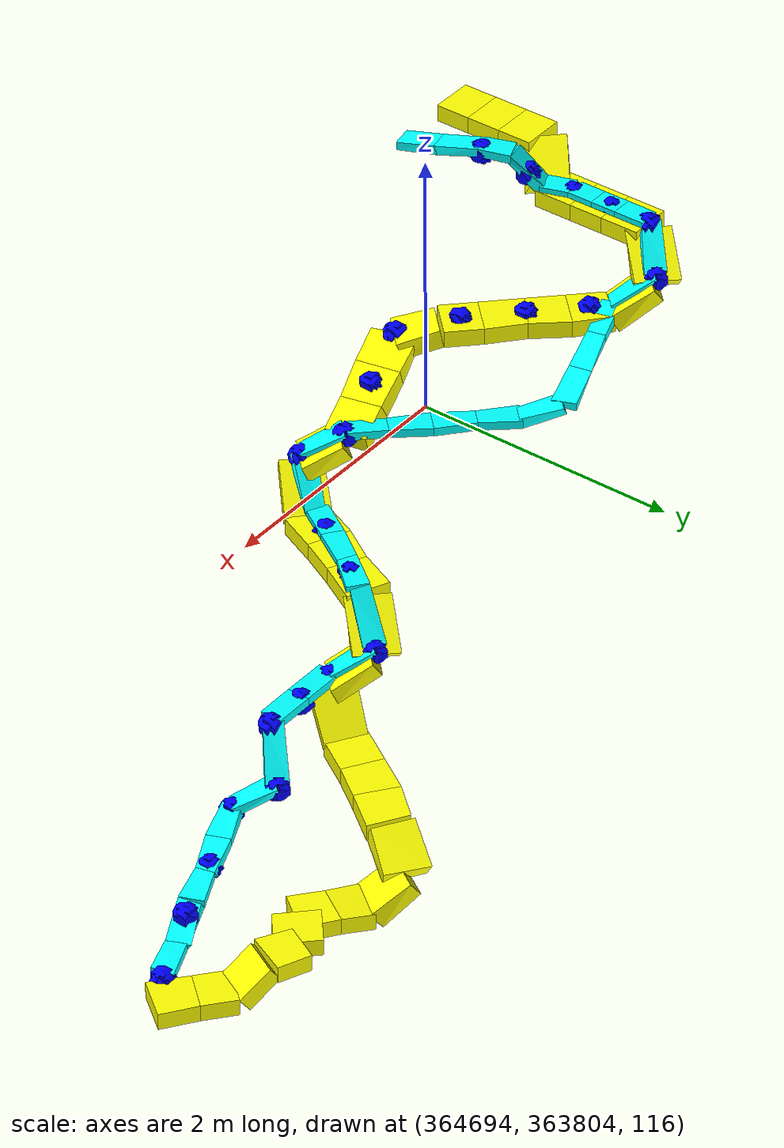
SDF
<sdf version="1.5">
 <world name="default">
  <include><uri>model://sun</uri></include>
  <model name="road_segment_126">
   <static>true</static>
   <pose>364693.84 363804.215 118.44 0 -0.0 1.5707963267948966</pose>
   <link name="link">
    <collision name="collision">
     <geometry><box><size>0.25 0.3 0.12</size></box></geometry>
     <surface><friction><ode><mu>0.2</mu><mu2>0.2</mu2></ode></friction></surface>
    </collision>
    <visual name="visual">
     <geometry><box><size>0.25 0.3 0.12</size></box></geometry>
     <material><ambient>1 1 0 1</ambient><diffuse>1 1 0 1</diffuse><emissive>1 1 0 1</emissive></material>
    </visual>
   </link>
  </model>
  <model name="road_segment_127">
   <static>true</static>
   <pose>364693.84 363804.465 118.44 0 -0.0 1.5707963267948966</pose>
   <link name="link">
    <collision name="collision">
     <geometry><box><size>0.25 0.3 0.12</size></box></geometry>
     <surface><friction><ode><mu>0.2</mu><mu2>0.2</mu2></ode></friction></surface>
    </collision>
    <visual name="visual">
     <geometry><box><size>0.25 0.3 0.12</size></box></geometry>
     <material><ambient>1 1 0 1</ambient><diffuse>1 1 0 1</diffuse><emissive>1 1 0 1</emissive></material>
    </visual>
   </link>
  </model>
  <model name="road_segment_128">
   <static>true</static>
   <pose>364693.84 363804.715 118.44 0 -0.0 1.5707963267948966</pose>
   <link name="link">
    <collision name="collision">
     <geometry><box><size>0.25 0.3 0.12</size></box></geometry>
     <surface><friction><ode><mu>0.2</mu><mu2>0.2</mu2></ode></friction></surface>
    </collision>
    <visual name="visual">
     <geometry><box><size>0.25 0.3 0.12</size></box></geometry>
     <material><ambient>1 1 0 1</ambient><diffuse>1 1 0 1</diffuse><emissive>1 1 0 1</emissive></material>
    </visual>
   </link>
  </model>
  <model name="road_segment_129">
   <static>true</static>
   <pose>364693.94 363804.94 118.34000000122235 0 0.615479703017887 0.7853981633974483</pose>
   <link name="link">
    <collision name="collision">
     <geometry><box><size>0.3464101600485464 0.3 0.12</size></box></geometry>
     <surface><friction><ode><mu>0.2</mu><mu2>0.2</mu2></ode></friction></surface>
    </collision>
    <visual name="visual">
     <geometry><box><size>0.3464101600485464 0.3 0.12</size></box></geometry>
     <material><ambient>1 1 0 1</ambient><diffuse>1 1 0 1</diffuse><emissive>1 1 0 1</emissive></material>
    </visual>
   </link>
  </model>
  <model name="road_segment_130">
   <static>true</static>
   <pose>364694.04 363805.17333333334 118.24000000122236 0 9.167706594004524e-09 1.5707963267948966</pose>
   <link name="link">
    <collision name="collision">
     <geometry><box><size>0.26666666666278616 0.3 0.12</size></box></geometry>
     <surface><friction><ode><mu>0.2</mu><mu2>0.2</mu2></ode></friction></surface>
    </collision>
    <visual name="visual">
     <geometry><box><size>0.26666666666278616 0.3 0.12</size></box></geometry>
     <material><ambient>1 1 0 1</ambient><diffuse>1 1 0 1</diffuse><emissive>1 1 0 1</emissive></material>
    </visual>
   </link>
  </model>
  <model name="road_segment_131">
   <static>true</static>
   <pose>364694.04 363805.44 118.24 0 -0.0 1.5707963267948966</pose>
   <link name="link">
    <collision name="collision">
     <geometry><box><size>0.2666666667209938 0.3 0.12</size></box></geometry>
     <surface><friction><ode><mu>0.2</mu><mu2>0.2</mu2></ode></friction></surface>
    </collision>
    <visual name="visual">
     <geometry><box><size>0.2666666667209938 0.3 0.12</size></box></geometry>
     <material><ambient>1 1 0 1</ambient><diffuse>1 1 0 1</diffuse><emissive>1 1 0 1</emissive></material>
    </visual>
   </link>
  </model>
  <model name="road_segment_132">
   <static>true</static>
   <pose>364694.04 363805.70666666667 118.24 0 -0.0 1.5707963267948966</pose>
   <link name="link">
    <collision name="collision">
     <geometry><box><size>0.26666666666278616 0.3 0.12</size></box></geometry>
     <surface><friction><ode><mu>0.2</mu><mu2>0.2</mu2></ode></friction></surface>
    </collision>
    <visual name="visual">
     <geometry><box><size>0.26666666666278616 0.3 0.12</size></box></geometry>
     <material><ambient>1 1 0 1</ambient><diffuse>1 1 0 1</diffuse><emissive>1 1 0 1</emissive></material>
    </visual>
   </link>
  </model>
  <model name="road_segment_133">
   <static>true</static>
   <pose>364694.14 363805.94 118.12500000143918 0 0.6827216774442275 0.7853981632519291</pose>
   <link name="link">
    <collision name="collision">
     <geometry><box><size>0.36455452083601586 0.3 0.12</size></box></geometry>
     <surface><friction><ode><mu>0.2</mu><mu2>0.2</mu2></ode></friction></surface>
    </collision>
    <visual name="visual">
     <geometry><box><size>0.36455452083601586 0.3 0.12</size></box></geometry>
     <material><ambient>1 1 0 1</ambient><diffuse>1 1 0 1</diffuse><emissive>1 1 0 1</emissive></material>
    </visual>
   </link>
  </model>
  <model name="road_segment_134">
   <static>true</static>
   <pose>364694.33999999997 363805.93999999994 117.91000000200235 0 0.6154797127725574 -0.7853981633974483</pose>
   <link name="link">
    <collision name="collision">
     <geometry><box><size>0.34641016253876156 0.3 0.12</size></box></geometry>
     <surface><friction><ode><mu>0.2</mu><mu2>0.2</mu2></ode></friction></surface>
    </collision>
    <visual name="visual">
     <geometry><box><size>0.34641016253876156 0.3 0.12</size></box></geometry>
     <material><ambient>1 1 0 1</ambient><diffuse>1 1 0 1</diffuse><emissive>1 1 0 1</emissive></material>
    </visual>
   </link>
  </model>
  <model name="road_segment_135">
   <static>true</static>
   <pose>364694.54000000004 363805.74 117.81000000056316 0 3.982156419239165e-09 -0.7853981632519291</pose>
   <link name="link">
    <collision name="collision">
     <geometry><box><size>0.2828427124499236 0.3 0.12</size></box></geometry>
     <surface><friction><ode><mu>0.2</mu><mu2>0.2</mu2></ode></friction></surface>
    </collision>
    <visual name="visual">
     <geometry><box><size>0.2828427124499236 0.3 0.12</size></box></geometry>
     <material><ambient>1 1 0 1</ambient><diffuse>1 1 0 1</diffuse><emissive>1 1 0 1</emissive></material>
    </visual>
   </link>
  </model>
  <model name="road_segment_136">
   <static>true</static>
   <pose>364694.74 363805.54000000004 117.81 0 -0.0 -0.7853981635429674</pose>
   <link name="link">
    <collision name="collision">
     <geometry><box><size>0.2828427124499236 0.3 0.12</size></box></geometry>
     <surface><friction><ode><mu>0.2</mu><mu2>0.2</mu2></ode></friction></surface>
    </collision>
    <visual name="visual">
     <geometry><box><size>0.2828427124499236 0.3 0.12</size></box></geometry>
     <material><ambient>1 1 0 1</ambient><diffuse>1 1 0 1</diffuse><emissive>1 1 0 1</emissive></material>
    </visual>
   </link>
  </model>
  <model name="road_segment_137">
   <static>true</static>
   <pose>364694.93999999994 363805.33999999997 117.81 0 -0.0 -0.7853981633974483</pose>
   <link name="link">
    <collision name="collision">
     <geometry><box><size>0.2828427124910826 0.3 0.12</size></box></geometry>
     <surface><friction><ode><mu>0.2</mu><mu2>0.2</mu2></ode></friction></surface>
    </collision>
    <visual name="visual">
     <geometry><box><size>0.2828427124910826 0.3 0.12</size></box></geometry>
     <material><ambient>1 1 0 1</ambient><diffuse>1 1 0 1</diffuse><emissive>1 1 0 1</emissive></material>
    </visual>
   </link>
  </model>
  <model name="road_segment_138">
   <static>true</static>
   <pose>364695.14 363805.14 117.81000000214787 0 -1.518769276526926e-08 -0.7853981632519291</pose>
   <link name="link">
    <collision name="collision">
     <geometry><box><size>0.28284271244992365 0.3 0.12</size></box></geometry>
     <surface><friction><ode><mu>0.2</mu><mu2>0.2</mu2></ode></friction></surface>
    </collision>
    <visual name="visual">
     <geometry><box><size>0.28284271244992365 0.3 0.12</size></box></geometry>
     <material><ambient>1 1 0 1</ambient><diffuse>1 1 0 1</diffuse><emissive>1 1 0 1</emissive></material>
    </visual>
   </link>
  </model>
  <model name="road_segment_139">
   <static>true</static>
   <pose>364695.33999999997 363804.94000000006 117.7750000027736 0 0.242612453724079 -0.7853981633974483</pose>
   <link name="link">
    <collision name="collision">
     <geometry><box><size>0.2913760464340045 0.3 0.12</size></box></geometry>
     <surface><friction><ode><mu>0.2</mu><mu2>0.2</mu2></ode></friction></surface>
    </collision>
    <visual name="visual">
     <geometry><box><size>0.2913760464340045 0.3 0.12</size></box></geometry>
     <material><ambient>1 1 0 1</ambient><diffuse>1 1 0 1</diffuse><emissive>1 1 0 1</emissive></material>
    </visual>
   </link>
  </model>
  <model name="road_segment_140">
   <static>true</static>
   <pose>364695.57333333336 363804.87333333335 117.69666666885624 0 0.3054303604847163 0.24497866307550445</pose>
   <link name="link">
    <collision name="collision">
     <geometry><box><size>0.2882128837115288 0.3 0.12</size></box></geometry>
     <surface><friction><ode><mu>0.2</mu><mu2>0.2</mu2></ode></friction></surface>
    </collision>
    <visual name="visual">
     <geometry><box><size>0.2882128837115288 0.3 0.12</size></box></geometry>
     <material><ambient>1 1 0 1</ambient><diffuse>1 1 0 1</diffuse><emissive>1 1 0 1</emissive></material>
    </visual>
   </link>
  </model>
  <model name="road_segment_141">
   <static>true</static>
   <pose>364695.83999999997 363804.94 117.6100000031403 0 0.30543036660978573 0.24497866307550445</pose>
   <link name="link">
    <collision name="collision">
     <geometry><box><size>0.28821288426812897 0.3 0.12</size></box></geometry>
     <surface><friction><ode><mu>0.2</mu><mu2>0.2</mu2></ode></friction></surface>
    </collision>
    <visual name="visual">
     <geometry><box><size>0.28821288426812897 0.3 0.12</size></box></geometry>
     <material><ambient>1 1 0 1</ambient><diffuse>1 1 0 1</diffuse><emissive>1 1 0 1</emissive></material>
    </visual>
   </link>
  </model>
  <model name="road_segment_142">
   <static>true</static>
   <pose>364696.1066666667 363805.00666666665 117.52333333649887 0 0.30543036660978573 0.24497866307550445</pose>
   <link name="link">
    <collision name="collision">
     <geometry><box><size>0.28821288426812897 0.3 0.12</size></box></geometry>
     <surface><friction><ode><mu>0.2</mu><mu2>0.2</mu2></ode></friction></surface>
    </collision>
    <visual name="visual">
     <geometry><box><size>0.28821288426812897 0.3 0.12</size></box></geometry>
     <material><ambient>1 1 0 1</ambient><diffuse>1 1 0 1</diffuse><emissive>1 1 0 1</emissive></material>
    </visual>
   </link>
  </model>
  <model name="road_segment_143">
   <static>true</static>
   <pose>364696.33999999997 363804.94 117.41000000222935 0 0.45961933638723745 -0.7853981632519291</pose>
   <link name="link">
    <collision name="collision">
     <geometry><box><size>0.31559467758083537 0.3 0.12</size></box></geometry>
     <surface><friction><ode><mu>0.2</mu><mu2>0.2</mu2></ode></friction></surface>
    </collision>
    <visual name="visual">
     <geometry><box><size>0.31559467758083537 0.3 0.12</size></box></geometry>
     <material><ambient>1 1 0 1</ambient><diffuse>1 1 0 1</diffuse><emissive>1 1 0 1</emissive></material>
    </visual>
   </link>
  </model>
  <model name="road_segment_144">
   <static>true</static>
   <pose>364696.54000000004 363804.94 117.21000000222936 0 0.7433431710328967 0.7853981632519291</pose>
   <link name="link">
    <collision name="collision">
     <geometry><box><size>0.38418745294360357 0.3 0.12</size></box></geometry>
     <surface><friction><ode><mu>0.2</mu><mu2>0.2</mu2></ode></friction></surface>
    </collision>
    <visual name="visual">
     <geometry><box><size>0.38418745294360357 0.3 0.12</size></box></geometry>
     <material><ambient>1 1 0 1</ambient><diffuse>1 1 0 1</diffuse><emissive>1 1 0 1</emissive></material>
    </visual>
   </link>
  </model>
  <model name="road_segment_145">
   <static>true</static>
   <pose>364696.70666666667 363805.17333333334 117.08000000158907 0 1.0659818940150594e-08 1.107148717881402</pose>
   <link name="link">
    <collision name="collision">
     <geometry><box><size>0.2981423969826178 0.3 0.12</size></box></geometry>
     <surface><friction><ode><mu>0.2</mu><mu2>0.2</mu2></ode></friction></surface>
    </collision>
    <visual name="visual">
     <geometry><box><size>0.2981423969826178 0.3 0.12</size></box></geometry>
     <material><ambient>1 1 0 1</ambient><diffuse>1 1 0 1</diffuse><emissive>1 1 0 1</emissive></material>
    </visual>
   </link>
  </model>
  <model name="road_segment_146">
   <static>true</static>
   <pose>364696.83999999997 363805.44 117.08 0 -0.0 1.1071487177940904</pose>
   <link name="link">
    <collision name="collision">
     <geometry><box><size>0.29814239706071155 0.3 0.12</size></box></geometry>
     <surface><friction><ode><mu>0.1</mu><mu2>0.1</mu2></ode></friction></surface>
    </collision>
    <visual name="visual">
     <geometry><box><size>0.29814239706071155 0.3 0.12</size></box></geometry>
     <material><ambient>1 1 0 1</ambient><diffuse>1 1 0 1</diffuse><emissive>1 1 0 1</emissive></material>
    </visual>
   </link>
  </model>
  <model name="road_segment_147">
   <static>true</static>
   <pose>364696.9733333333 363805.70666666667 117.08 0 -0.0 1.107148717881402</pose>
   <link name="link">
    <collision name="collision">
     <geometry><box><size>0.2981423969826178 0.3 0.12</size></box></geometry>
     <surface><friction><ode><mu>0.1</mu><mu2>0.1</mu2></ode></friction></surface>
    </collision>
    <visual name="visual">
     <geometry><box><size>0.2981423969826178 0.3 0.12</size></box></geometry>
     <material><ambient>1 1 0 1</ambient><diffuse>1 1 0 1</diffuse><emissive>1 1 0 1</emissive></material>
    </visual>
   </link>
  </model>
  <model name="road_segment_148">
   <static>true</static>
   <pose>364697.14 363805.94 116.9500000016269 0 0.7433431684339605 0.7853981632519291</pose>
   <link name="link">
    <collision name="collision">
     <geometry><box><size>0.3841874520257632 0.3 0.12</size></box></geometry>
     <surface><friction><ode><mu>0.1</mu><mu2>0.1</mu2></ode></friction></surface>
    </collision>
    <visual name="visual">
     <geometry><box><size>0.3841874520257632 0.3 0.12</size></box></geometry>
     <material><ambient>1 1 0 1</ambient><diffuse>1 1 0 1</diffuse><emissive>1 1 0 1</emissive></material>
    </visual>
   </link>
  </model>
  <model name="road_segment_149">
   <static>true</static>
   <pose>364697.33999999997 363805.94 116.73000000239524 0 0.5667523301984198 -0.7853981632519291</pose>
   <link name="link">
    <collision name="collision">
     <geometry><box><size>0.3352610931858899 0.3 0.12</size></box></geometry>
     <surface><friction><ode><mu>0.1</mu><mu2>0.1</mu2></ode></friction></surface>
    </collision>
    <visual name="visual">
     <geometry><box><size>0.3352610931858899 0.3 0.12</size></box></geometry>
     <material><ambient>1 1 0 1</ambient><diffuse>1 1 0 1</diffuse><emissive>1 1 0 1</emissive></material>
    </visual>
   </link>
  </model>
  <model name="road_segment_150">
   <static>true</static>
   <pose>364697.52 363805.96 116.50000000076834 0 0.7705444963345205 0.982793723303298</pose>
   <link name="link">
    <collision name="collision">
     <geometry><box><size>0.40199502589941777 0.3 0.12</size></box></geometry>
     <surface><friction><ode><mu>0.1</mu><mu2>0.1</mu2></ode></friction></surface>
    </collision>
    <visual name="visual">
     <geometry><box><size>0.40199502589941777 0.3 0.12</size></box></geometry>
     <material><ambient>1 1 0 1</ambient><diffuse>1 1 0 1</diffuse><emissive>1 1 0 1</emissive></material>
    </visual>
   </link>
  </model>
  <model name="road_segment_151">
   <static>true</static>
   <pose>364697.68 363806.2 116.36 0 -0.0 0.9827937231353913</pose>
   <link name="link">
    <collision name="collision">
     <geometry><box><size>0.28844410204745125 0.3 0.12</size></box></geometry>
     <surface><friction><ode><mu>0.02</mu><mu2>0.02</mu2></ode></friction></surface>
    </collision>
    <visual name="visual">
     <geometry><box><size>0.28844410204745125 0.3 0.12</size></box></geometry>
     <material><ambient>1 1 0 1</ambient><diffuse>1 1 0 1</diffuse><emissive>1 1 0 1</emissive></material>
    </visual>
   </link>
  </model>
  <model name="road_segment_152">
   <static>true</static>
   <pose>364697.83999999997 363806.44 116.36 0 -0.0 0.982793723303298</pose>
   <link name="link">
    <collision name="collision">
     <geometry><box><size>0.28844410201516346 0.3 0.12</size></box></geometry>
     <surface><friction><ode><mu>0.02</mu><mu2>0.02</mu2></ode></friction></surface>
    </collision>
    <visual name="visual">
     <geometry><box><size>0.28844410201516346 0.3 0.12</size></box></geometry>
     <material><ambient>1 1 0 1</ambient><diffuse>1 1 0 1</diffuse><emissive>1 1 0 1</emissive></material>
    </visual>
   </link>
  </model>
  <model name="road_segment_153">
   <static>true</static>
   <pose>364698.0 363806.68 116.36 0 -0.0 0.9827937231353913</pose>
   <link name="link">
    <collision name="collision">
     <geometry><box><size>0.28844410204745125 0.3 0.12</size></box></geometry>
     <surface><friction><ode><mu>0.02</mu><mu2>0.02</mu2></ode></friction></surface>
    </collision>
    <visual name="visual">
     <geometry><box><size>0.28844410204745125 0.3 0.12</size></box></geometry>
     <material><ambient>1 1 0 1</ambient><diffuse>1 1 0 1</diffuse><emissive>1 1 0 1</emissive></material>
    </visual>
   </link>
  </model>
  <model name="road_segment_154">
   <static>true</static>
   <pose>364698.16000000003 363806.92 116.28000000102445 0 0.506444638013839 0.982793723303298</pose>
   <link name="link">
    <collision name="collision">
     <geometry><box><size>0.3298484490363457 0.3 0.12</size></box></geometry>
     <surface><friction><ode><mu>0.02</mu><mu2>0.02</mu2></ode></friction></surface>
    </collision>
    <visual name="visual">
     <geometry><box><size>0.3298484490363457 0.3 0.12</size></box></geometry>
     <material><ambient>1 1 0 1</ambient><diffuse>1 1 0 1</diffuse><emissive>1 1 0 1</emissive></material>
    </visual>
   </link>
  </model>
  <model name="road_segment_155">
   <static>true</static>
   <pose>364698.33999999997 363806.9733333333 116.10833333534781 0 0.6515877585321058 -0.5880026034132422</pose>
   <link name="link">
    <collision name="collision">
     <geometry><box><size>0.3023059524893846 0.3 0.12</size></box></geometry>
     <surface><friction><ode><mu>0.02</mu><mu2>0.02</mu2></ode></friction></surface>
    </collision>
    <visual name="visual">
     <geometry><box><size>0.3023059524893846 0.3 0.12</size></box></geometry>
     <material><ambient>1 1 0 1</ambient><diffuse>1 1 0 1</diffuse><emissive>1 1 0 1</emissive></material>
    </visual>
   </link>
  </model>
  <model name="road_segment_156">
   <static>true</static>
   <pose>364698.54000000004 363806.83999999997 116.02833333432336 0 -0.09676933122981045 -0.5880026036147302</pose>
   <link name="link">
    <collision name="collision">
     <geometry><box><size>0.24149994232239522 0.3 0.12</size></box></geometry>
     <surface><friction><ode><mu>0.02</mu><mu2>0.02</mu2></ode></friction></surface>
    </collision>
    <visual name="visual">
     <geometry><box><size>0.24149994232239522 0.3 0.12</size></box></geometry>
     <material><ambient>1 1 0 1</ambient><diffuse>1 1 0 1</diffuse><emissive>1 1 0 1</emissive></material>
    </visual>
   </link>
  </model>
  <model name="road_segment_157">
   <static>true</static>
   <pose>364698.74 363806.70666666667 116.04 0 -0.0 -0.5880026034132422</pose>
   <link name="link">
    <collision name="collision">
     <geometry><box><size>0.2403700850233988 0.3 0.12</size></box></geometry>
     <surface><friction><ode><mu>0.02</mu><mu2>0.02</mu2></ode></friction></surface>
    </collision>
    <visual name="visual">
     <geometry><box><size>0.2403700850233988 0.3 0.12</size></box></geometry>
     <material><ambient>1 1 0 1</ambient><diffuse>1 1 0 1</diffuse><emissive>1 1 0 1</emissive></material>
    </visual>
   </link>
  </model>
  <model name="road_segment_158">
   <static>true</static>
   <pose>364698.94 363806.74 116.04 0 -0.0 0.7853981635429674</pose>
   <link name="link">
    <collision name="collision">
     <geometry><box><size>0.2828427124499236 0.3 0.12</size></box></geometry>
     <surface><friction><ode><mu>0.02</mu><mu2>0.02</mu2></ode></friction></surface>
    </collision>
    <visual name="visual">
     <geometry><box><size>0.2828427124499236 0.3 0.12</size></box></geometry>
     <material><ambient>1 1 0 1</ambient><diffuse>1 1 0 1</diffuse><emissive>1 1 0 1</emissive></material>
    </visual>
   </link>
  </model>
  <model name="road_segment_159">
   <static>true</static>
   <pose>364699.14 363806.79000000004 116.04 0 -0.0 -0.4636476091172214</pose>
   <link name="link">
    <collision name="collision">
     <geometry><box><size>0.22360679777601022 0.3 0.12</size></box></geometry>
     <surface><friction><ode><mu>0.02</mu><mu2>0.02</mu2></ode></friction></surface>
    </collision>
    <visual name="visual">
     <geometry><box><size>0.22360679777601022 0.3 0.12</size></box></geometry>
     <material><ambient>1 1 0 1</ambient><diffuse>1 1 0 1</diffuse><emissive>1 1 0 1</emissive></material>
    </visual>
   </link>
  </model>
  <model name="road_segment_160">
   <static>true</static>
   <pose>364699.33999999997 363806.69 115.95500000034635 0 0.6500372064508019 -0.46364760888439077</pose>
   <link name="link">
    <collision name="collision">
     <geometry><box><size>0.28089143768454294 0.3 0.12</size></box></geometry>
     <surface><friction><ode><mu>0.2</mu><mu2>0.2</mu2></ode></friction></surface>
    </collision>
    <visual name="visual">
     <geometry><box><size>0.28089143768454294 0.3 0.12</size></box></geometry>
     <material><ambient>1 1 0 1</ambient><diffuse>1 1 0 1</diffuse><emissive>1 1 0 1</emissive></material>
    </visual>
   </link>
  </model>
  <model name="road_segment_161">
   <static>true</static>
   <pose>364699.54000000004 363806.56000000006 115.87000000034634 0 2.704459829751352e-09 -0.6747409421170752</pose>
   <link name="link">
    <collision name="collision">
     <geometry><box><size>0.25612496949040514 0.3 0.12</size></box></geometry>
     <surface><friction><ode><mu>0.02</mu><mu2>0.02</mu2></ode></friction></surface>
    </collision>
    <visual name="visual">
     <geometry><box><size>0.25612496949040514 0.3 0.12</size></box></geometry>
     <material><ambient>1 1 0 1</ambient><diffuse>1 1 0 1</diffuse><emissive>1 1 0 1</emissive></material>
    </visual>
   </link>
  </model>
  <model name="road_segment_162">
   <static>true</static>
   <pose>364699.74 363806.4 115.87 0 -0.0 -0.6747409422945376</pose>
   <link name="link">
    <collision name="collision">
     <geometry><box><size>0.2561249695267672 0.3 0.12</size></box></geometry>
     <surface><friction><ode><mu>0.02</mu><mu2>0.02</mu2></ode></friction></surface>
    </collision>
    <visual name="visual">
     <geometry><box><size>0.2561249695267672 0.3 0.12</size></box></geometry>
     <material><ambient>1 1 0 1</ambient><diffuse>1 1 0 1</diffuse><emissive>1 1 0 1</emissive></material>
    </visual>
   </link>
  </model>
  <model name="normal_astar_segment_102">
   <static>true</static>
   <pose>364694.31200000003 363804.196 118.41280000069308 0 -0.21282356075202818 1.731559067436267</pose>
   <link name="link">
    <visual name="visual">
     <geometry><box><size>0.3067882657805418 0.15 0.06</size></box></geometry>
     <material><ambient>0 1 1 1</ambient><diffuse>0 1 1 1</diffuse><emissive>0 1 1 1</emissive></material>
    </visual>
   </link>
  </model>
  <model name="normal_astar_segment_103">
   <static>true</static>
   <pose>364694.26399999997 363804.492 118.47760000034889 0 -0.21282355853827625 1.731559067467339</pose>
   <link name="link">
    <visual name="visual">
     <geometry><box><size>0.3067882655749961 0.15 0.06</size></box></geometry>
     <material><ambient>0 1 1 1</ambient><diffuse>0 1 1 1</diffuse><emissive>0 1 1 1</emissive></material>
    </visual>
   </link>
  </model>
  <model name="normal_astar_segment_104">
   <static>true</static>
   <pose>364694.20666666667 363804.74 118.50999999999998 0 6.740800259471083e-14 1.8925468811042274</pose>
   <link name="link">
    <visual name="visual">
     <geometry><box><size>0.21081851068402757 0.15 0.06</size></box></geometry>
     <material><ambient>0 1 1 1</ambient><diffuse>0 1 1 1</diffuse><emissive>0 1 1 1</emissive></material>
    </visual>
   </link>
  </model>
  <model name="normal_astar_segment_105">
   <static>true</static>
   <pose>364694.14 363804.94 118.41000000122234 0 0.7590702032359603 1.8925468814534734</pose>
   <link name="link">
    <visual name="visual">
     <geometry><box><size>0.2905932611978746 0.15 0.06</size></box></geometry>
     <material><ambient>0 1 1 1</ambient><diffuse>0 1 1 1</diffuse><emissive>0 1 1 1</emissive></material>
    </visual>
   </link>
  </model>
  <model name="normal_astar_segment_106">
   <static>true</static>
   <pose>364694.0733333333 363805.14 118.31000000122235 0 1.1596333502373293e-08 1.8925468811042274</pose>
   <link name="link">
    <visual name="visual">
     <geometry><box><size>0.2108185106840276 0.15 0.06</size></box></geometry>
     <material><ambient>0 1 1 1</ambient><diffuse>0 1 1 1</diffuse><emissive>0 1 1 1</emissive></material>
    </visual>
   </link>
  </model>
  <model name="normal_astar_segment_107">
   <static>true</static>
   <pose>364694.04 363805.33999999997 118.30999999999999 0 -0.0 1.5707963267948966</pose>
   <link name="link">
    <visual name="visual">
     <geometry><box><size>0.20000000001164153 0.15 0.06</size></box></geometry>
     <material><ambient>0 1 1 1</ambient><diffuse>0 1 1 1</diffuse><emissive>0 1 1 1</emissive></material>
    </visual>
   </link>
  </model>
  <model name="normal_astar_segment_108">
   <static>true</static>
   <pose>364694.04 363805.54000000004 118.30999999999999 0 -0.0 1.5707963267948966</pose>
   <link name="link">
    <visual name="visual">
     <geometry><box><size>0.20000000001164153 0.15 0.06</size></box></geometry>
     <material><ambient>0 1 1 1</ambient><diffuse>0 1 1 1</diffuse><emissive>0 1 1 1</emissive></material>
    </visual>
   </link>
  </model>
  <model name="normal_astar_segment_109">
   <static>true</static>
   <pose>364694.04 363805.74 118.30999999999999 0 -0.0 1.5707963267948966</pose>
   <link name="link">
    <visual name="visual">
     <geometry><box><size>0.20000000001164153 0.15 0.06</size></box></geometry>
     <material><ambient>0 1 1 1</ambient><diffuse>0 1 1 1</diffuse><emissive>0 1 1 1</emissive></material>
    </visual>
   </link>
  </model>
  <model name="normal_astar_segment_110">
   <static>true</static>
   <pose>364694.14 363805.94 118.19500000143917 0 0.6827216774442275 0.7853981632519291</pose>
   <link name="link">
    <visual name="visual">
     <geometry><box><size>0.36455452083601586 0.15 0.06</size></box></geometry>
     <material><ambient>0 1 1 1</ambient><diffuse>0 1 1 1</diffuse><emissive>0 1 1 1</emissive></material>
    </visual>
   </link>
  </model>
  <model name="normal_astar_segment_111">
   <static>true</static>
   <pose>364694.33999999997 363805.94 117.98000000200234 0 0.6154797128411558 -0.7853981632519291</pose>
   <link name="link">
    <visual name="visual">
     <geometry><box><size>0.34641016250515533 0.15 0.06</size></box></geometry>
     <material><ambient>0 1 1 1</ambient><diffuse>0 1 1 1</diffuse><emissive>0 1 1 1</emissive></material>
    </visual>
   </link>
  </model>
  <model name="normal_astar_segment_112">
   <static>true</static>
   <pose>364694.57333333336 363805.87333333335 117.8366666688315 0 0.30543035982025635 0.24497866307550445</pose>
   <link name="link">
    <visual name="visual">
     <geometry><box><size>0.2882128836511477 0.15 0.06</size></box></geometry>
     <material><ambient>0 1 1 1</ambient><diffuse>0 1 1 1</diffuse><emissive>0 1 1 1</emissive></material>
    </visual>
   </link>
  </model>
  <model name="normal_astar_segment_113">
   <static>true</static>
   <pose>364694.83999999997 363805.94 117.75000000321596 0 0.3054303666098328 0.24497866307550445</pose>
   <link name="link">
    <visual name="visual">
     <geometry><box><size>0.28821288426813324 0.15 0.06</size></box></geometry>
     <material><ambient>0 1 1 1</ambient><diffuse>0 1 1 1</diffuse><emissive>0 1 1 1</emissive></material>
    </visual>
   </link>
  </model>
  <model name="normal_astar_segment_114">
   <static>true</static>
   <pose>364695.1066666667 363806.00666666665 117.66333333657451 0 0.30543036660978573 0.24497866307550445</pose>
   <link name="link">
    <visual name="visual">
     <geometry><box><size>0.28821288426812897 0.15 0.06</size></box></geometry>
     <material><ambient>0 1 1 1</ambient><diffuse>0 1 1 1</diffuse><emissive>0 1 1 1</emissive></material>
    </visual>
   </link>
  </model>
  <model name="normal_astar_segment_115">
   <static>true</static>
   <pose>364695.33999999997 363805.93999999994 117.58500000210711 0 0.24261245122246494 -0.7853981633974483</pose>
   <link name="link">
    <visual name="visual">
     <geometry><box><size>0.2913760462536084 0.15 0.06</size></box></geometry>
     <material><ambient>0 1 1 1</ambient><diffuse>0 1 1 1</diffuse><emissive>0 1 1 1</emissive></material>
    </visual>
   </link>
  </model>
  <model name="normal_astar_segment_116">
   <static>true</static>
   <pose>364695.54000000004 363805.74 117.55000000048021 0 3.3956201195823727e-09 -0.7853981632519291</pose>
   <link name="link">
    <visual name="visual">
     <geometry><box><size>0.2828427124499236 0.15 0.06</size></box></geometry>
     <material><ambient>0 1 1 1</ambient><diffuse>0 1 1 1</diffuse><emissive>0 1 1 1</emissive></material>
    </visual>
   </link>
  </model>
  <model name="normal_astar_segment_117">
   <static>true</static>
   <pose>364695.74 363805.54000000004 117.55 0 -0.0 -0.7853981635429674</pose>
   <link name="link">
    <visual name="visual">
     <geometry><box><size>0.2828427124499236 0.15 0.06</size></box></geometry>
     <material><ambient>0 1 1 1</ambient><diffuse>0 1 1 1</diffuse><emissive>0 1 1 1</emissive></material>
    </visual>
   </link>
  </model>
  <model name="normal_astar_segment_118">
   <static>true</static>
   <pose>364695.93999999994 363805.33999999997 117.55 0 -0.0 -0.7853981633974483</pose>
   <link name="link">
    <visual name="visual">
     <geometry><box><size>0.2828427124910826 0.15 0.06</size></box></geometry>
     <material><ambient>0 1 1 1</ambient><diffuse>0 1 1 1</diffuse><emissive>0 1 1 1</emissive></material>
    </visual>
   </link>
  </model>
  <model name="normal_astar_segment_119">
   <static>true</static>
   <pose>364696.14 363805.14 117.55000000155123 0 -1.096884176767793e-08 -0.7853981632519291</pose>
   <link name="link">
    <visual name="visual">
     <geometry><box><size>0.2828427124499236 0.15 0.06</size></box></geometry>
     <material><ambient>0 1 1 1</ambient><diffuse>0 1 1 1</diffuse><emissive>0 1 1 1</emissive></material>
    </visual>
   </link>
  </model>
  <model name="normal_astar_segment_120">
   <static>true</static>
   <pose>364696.33999999997 363804.94000000006 117.48000000219152 0 0.4596193361144485 -0.7853981633974483</pose>
   <link name="link">
    <visual name="visual">
     <geometry><box><size>0.3155946775841477 0.15 0.06</size></box></geometry>
     <material><ambient>0 1 1 1</ambient><diffuse>0 1 1 1</diffuse><emissive>0 1 1 1</emissive></material>
    </visual>
   </link>
  </model>
  <model name="normal_astar_segment_121">
   <static>true</static>
   <pose>364696.52 363804.96 117.28000000064027 0 0.7335813261273669 0.982793723303298</pose>
   <link name="link">
    <visual name="visual">
     <geometry><box><size>0.3883297576200314 0.15 0.06</size></box></geometry>
     <material><ambient>0 1 1 1</ambient><diffuse>0 1 1 1</diffuse><emissive>0 1 1 1</emissive></material>
    </visual>
   </link>
  </model>
  <model name="normal_astar_segment_122">
   <static>true</static>
   <pose>364696.68 363805.2 117.14999999999999 0 -0.0 0.9827937231353913</pose>
   <link name="link">
    <visual name="visual">
     <geometry><box><size>0.28844410204745125 0.15 0.06</size></box></geometry>
     <material><ambient>0 1 1 1</ambient><diffuse>0 1 1 1</diffuse><emissive>0 1 1 1</emissive></material>
    </visual>
   </link>
  </model>
  <model name="normal_astar_segment_123">
   <static>true</static>
   <pose>364696.83999999997 363805.44 117.14999999999999 0 -0.0 0.982793723303298</pose>
   <link name="link">
    <visual name="visual">
     <geometry><box><size>0.28844410201516346 0.15 0.06</size></box></geometry>
     <material><ambient>0 1 1 1</ambient><diffuse>0 1 1 1</diffuse><emissive>0 1 1 1</emissive></material>
    </visual>
   </link>
  </model>
  <model name="normal_astar_segment_124">
   <static>true</static>
   <pose>364697.0 363805.68 117.14999999999999 0 -0.0 0.9827937231353913</pose>
   <link name="link">
    <visual name="visual">
     <geometry><box><size>0.28844410204745125 0.15 0.06</size></box></geometry>
     <material><ambient>0 1 1 1</ambient><diffuse>0 1 1 1</diffuse><emissive>0 1 1 1</emissive></material>
    </visual>
   </link>
  </model>
  <model name="normal_astar_segment_125">
   <static>true</static>
   <pose>364697.16000000003 363805.92 117.0200000016269 0 0.7335813174541792 0.982793723303298</pose>
   <link name="link">
    <visual name="visual">
     <geometry><box><size>0.38832975458410596 0.15 0.06</size></box></geometry>
     <material><ambient>0 1 1 1</ambient><diffuse>0 1 1 1</diffuse><emissive>0 1 1 1</emissive></material>
    </visual>
   </link>
  </model>
  <model name="normal_astar_segment_126">
   <static>true</static>
   <pose>364697.33999999997 363805.94 116.80000000239524 0 0.5667523301984198 -0.7853981632519291</pose>
   <link name="link">
    <visual name="visual">
     <geometry><box><size>0.3352610931858899 0.15 0.06</size></box></geometry>
     <material><ambient>0 1 1 1</ambient><diffuse>0 1 1 1</diffuse><emissive>0 1 1 1</emissive></material>
    </visual>
   </link>
  </model>
  <model name="normal_astar_segment_127">
   <static>true</static>
   <pose>364697.58999999997 363805.84 116.71000000076833 0 5.122255212777614e-09 0.0</pose>
   <link name="link">
    <visual name="visual">
     <geometry><box><size>0.29999999998835847 0.15 0.06</size></box></geometry>
     <material><ambient>0 1 1 1</ambient><diffuse>0 1 1 1</diffuse><emissive>0 1 1 1</emissive></material>
    </visual>
   </link>
  </model>
  <model name="normal_astar_segment_128">
   <static>true</static>
   <pose>364697.89 363805.84 116.71 0 -0.0 0.0</pose>
   <link name="link">
    <visual name="visual">
     <geometry><box><size>0.29999999998835847 0.15 0.06</size></box></geometry>
     <material><ambient>0 1 1 1</ambient><diffuse>0 1 1 1</diffuse><emissive>0 1 1 1</emissive></material>
    </visual>
   </link>
  </model>
  <model name="normal_astar_segment_129">
   <static>true</static>
   <pose>364698.14 363805.94 116.57000000175204 0 0.7803475662454766 0.7853981632519291</pose>
   <link name="link">
    <visual name="visual">
     <geometry><box><size>0.3979949723598726 0.15 0.06</size></box></geometry>
     <material><ambient>0 1 1 1</ambient><diffuse>0 1 1 1</diffuse><emissive>0 1 1 1</emissive></material>
    </visual>
   </link>
  </model>
  <model name="normal_astar_segment_130">
   <static>true</static>
   <pose>364698.33999999997 363805.94 116.36000000254658 0 0.45961933643679437 -0.7853981632519291</pose>
   <link name="link">
    <visual name="visual">
     <geometry><box><size>0.31559467758857673 0.15 0.06</size></box></geometry>
     <material><ambient>0 1 1 1</ambient><diffuse>0 1 1 1</diffuse><emissive>0 1 1 1</emissive></material>
    </visual>
   </link>
  </model>
  <model name="normal_astar_segment_131">
   <static>true</static>
   <pose>364698.56 363805.88 116.25400000188942 0 0.2772737807445141 0.32175055446940176</pose>
   <link name="link">
    <visual name="visual">
     <geometry><box><size>0.26302851539640326 0.15 0.06</size></box></geometry>
     <material><ambient>0 1 1 1</ambient><diffuse>0 1 1 1</diffuse><emissive>0 1 1 1</emissive></material>
    </visual>
   </link>
  </model>
  <model name="normal_astar_segment_132">
   <static>true</static>
   <pose>364698.8 363805.96 116.18200000221073 0 0.27727378280700776 0.32175055425112303</pose>
   <link name="link">
    <visual name="visual">
     <geometry><box><size>0.26302851553166207 0.15 0.06</size></box></geometry>
     <material><ambient>0 1 1 1</ambient><diffuse>0 1 1 1</diffuse><emissive>0 1 1 1</emissive></material>
    </visual>
   </link>
  </model>
  <model name="normal_astar_segment_133">
   <static>true</static>
   <pose>364699.04000000004 363806.04000000004 116.12800000111584 0 0.1413534658783542 0.3217505543966422</pose>
   <link name="link">
    <visual name="visual">
     <geometry><box><size>0.25553082042438163 0.15 0.06</size></box></geometry>
     <material><ambient>0 1 1 1</ambient><diffuse>0 1 1 1</diffuse><emissive>0 1 1 1</emissive></material>
    </visual>
   </link>
  </model>
  <model name="normal_astar_segment_134">
   <static>true</static>
   <pose>364699.28 363806.12 116.04200000033644 0 0.49326330840550897 0.32175055425112303</pose>
   <link name="link">
    <visual name="visual">
     <geometry><box><size>0.2872211687981903 0.15 0.06</size></box></geometry>
     <material><ambient>0 1 1 1</ambient><diffuse>0 1 1 1</diffuse><emissive>0 1 1 1</emissive></material>
    </visual>
   </link>
  </model>
  <model name="normal_astar_segment_135">
   <static>true</static>
   <pose>364699.52 363806.19999999995 115.95700000033644 0 0.1335962803554559 0.32175055446940176</pose>
   <link name="link">
    <visual name="visual">
     <geometry><box><size>0.25525673359168 0.15 0.06</size></box></geometry>
     <material><ambient>0 1 1 1</ambient><diffuse>0 1 1 1</diffuse><emissive>0 1 1 1</emissive></material>
    </visual>
   </link>
  </model>
  <model name="dijkstra_marker_63">
   <static>true</static>
   <pose>364694.24 363804.64 118.48 0 0 0</pose>
   <link name="link">
    <visual name="visual">
     <geometry><sphere><radius>0.08</radius></sphere></geometry>
     <material><ambient>0 0 1 1</ambient><diffuse>0 0 1 1</diffuse><emissive>0 0 1 1</emissive></material>
    </visual>
   </link>
  </model>
  <model name="dijkstra_marker_64">
   <static>true</static>
   <pose>364694.14 363804.94 118.38000000241561 0 0 0</pose>
   <link name="link">
    <visual name="visual">
     <geometry><sphere><radius>0.08</radius></sphere></geometry>
     <material><ambient>0 0 1 1</ambient><diffuse>0 0 1 1</diffuse><emissive>0 0 1 1</emissive></material>
    </visual>
   </link>
  </model>
  <model name="dijkstra_marker_65">
   <static>true</static>
   <pose>364694.04 363805.24 118.28 0 0 0</pose>
   <link name="link">
    <visual name="visual">
     <geometry><sphere><radius>0.08</radius></sphere></geometry>
     <material><ambient>0 0 1 1</ambient><diffuse>0 0 1 1</diffuse><emissive>0 0 1 1</emissive></material>
    </visual>
   </link>
  </model>
  <model name="dijkstra_marker_66">
   <static>true</static>
   <pose>364694.04 363805.54000000004 118.28 0 0 0</pose>
   <link name="link">
    <visual name="visual">
     <geometry><sphere><radius>0.08</radius></sphere></geometry>
     <material><ambient>0 0 1 1</ambient><diffuse>0 0 1 1</diffuse><emissive>0 0 1 1</emissive></material>
    </visual>
   </link>
  </model>
  <model name="dijkstra_marker_67">
   <static>true</static>
   <pose>364694.04 363805.84 118.28 0 0 0</pose>
   <link name="link">
    <visual name="visual">
     <geometry><sphere><radius>0.08</radius></sphere></geometry>
     <material><ambient>0 0 1 1</ambient><diffuse>0 0 1 1</diffuse><emissive>0 0 1 1</emissive></material>
    </visual>
   </link>
  </model>
  <model name="dijkstra_marker_68">
   <static>true</static>
   <pose>364694.24 363806.04 118.05000000287838 0 0 0</pose>
   <link name="link">
    <visual name="visual">
     <geometry><sphere><radius>0.08</radius></sphere></geometry>
     <material><ambient>0 0 1 1</ambient><diffuse>0 0 1 1</diffuse><emissive>0 0 1 1</emissive></material>
    </visual>
   </link>
  </model>
  <model name="dijkstra_marker_69">
   <static>true</static>
   <pose>364694.54 363805.74 117.85000000000001 0 0 0</pose>
   <link name="link">
    <visual name="visual">
     <geometry><sphere><radius>0.08</radius></sphere></geometry>
     <material><ambient>0 0 1 1</ambient><diffuse>0 0 1 1</diffuse><emissive>0 0 1 1</emissive></material>
    </visual>
   </link>
  </model>
  <model name="dijkstra_marker_70">
   <static>true</static>
   <pose>364694.83999999997 363805.44 117.85000000000001 0 0 0</pose>
   <link name="link">
    <visual name="visual">
     <geometry><sphere><radius>0.08</radius></sphere></geometry>
     <material><ambient>0 0 1 1</ambient><diffuse>0 0 1 1</diffuse><emissive>0 0 1 1</emissive></material>
    </visual>
   </link>
  </model>
  <model name="dijkstra_marker_71">
   <static>true</static>
   <pose>364695.14 363805.14 117.85000000000001 0 0 0</pose>
   <link name="link">
    <visual name="visual">
     <geometry><sphere><radius>0.08</radius></sphere></geometry>
     <material><ambient>0 0 1 1</ambient><diffuse>0 0 1 1</diffuse><emissive>0 0 1 1</emissive></material>
    </visual>
   </link>
  </model>
  <model name="dijkstra_marker_72">
   <static>true</static>
   <pose>364695.44 363804.84 117.78000000125147 0 0 0</pose>
   <link name="link">
    <visual name="visual">
     <geometry><sphere><radius>0.08</radius></sphere></geometry>
     <material><ambient>0 0 1 1</ambient><diffuse>0 0 1 1</diffuse><emissive>0 0 1 1</emissive></material>
    </visual>
   </link>
  </model>
  <model name="dijkstra_marker_73">
   <static>true</static>
   <pose>364695.83999999997 363804.94 117.6500000031403 0 0 0</pose>
   <link name="link">
    <visual name="visual">
     <geometry><sphere><radius>0.08</radius></sphere></geometry>
     <material><ambient>0 0 1 1</ambient><diffuse>0 0 1 1</diffuse><emissive>0 0 1 1</emissive></material>
    </visual>
   </link>
  </model>
  <model name="dijkstra_marker_74">
   <static>true</static>
   <pose>364696.24 363805.04 117.52000000317815 0 0 0</pose>
   <link name="link">
    <visual name="visual">
     <geometry><sphere><radius>0.08</radius></sphere></geometry>
     <material><ambient>0 0 1 1</ambient><diffuse>0 0 1 1</diffuse><emissive>0 0 1 1</emissive></material>
    </visual>
   </link>
  </model>
  <model name="dijkstra_marker_75">
   <static>true</static>
   <pose>364696.44 363804.84 117.38000000128058 0 0 0</pose>
   <link name="link">
    <visual name="visual">
     <geometry><sphere><radius>0.08</radius></sphere></geometry>
     <material><ambient>0 0 1 1</ambient><diffuse>0 0 1 1</diffuse><emissive>0 0 1 1</emissive></material>
    </visual>
   </link>
  </model>
  <model name="dijkstra_marker_76">
   <static>true</static>
   <pose>364696.70666666667 363805.24 117.12 0 0 0</pose>
   <link name="link">
    <visual name="visual">
     <geometry><sphere><radius>0.08</radius></sphere></geometry>
     <material><ambient>0 0 1 1</ambient><diffuse>0 0 1 1</diffuse><emissive>0 0 1 1</emissive></material>
    </visual>
   </link>
  </model>
  <model name="dijkstra_marker_77">
   <static>true</static>
   <pose>364696.9733333333 363805.64 117.12 0 0 0</pose>
   <link name="link">
    <visual name="visual">
     <geometry><sphere><radius>0.08</radius></sphere></geometry>
     <material><ambient>0 0 1 1</ambient><diffuse>0 0 1 1</diffuse><emissive>0 0 1 1</emissive></material>
    </visual>
   </link>
  </model>
  <model name="dijkstra_marker_78">
   <static>true</static>
   <pose>364697.24 363806.04 116.86000000325382 0 0 0</pose>
   <link name="link">
    <visual name="visual">
     <geometry><sphere><radius>0.08</radius></sphere></geometry>
     <material><ambient>0 0 1 1</ambient><diffuse>0 0 1 1</diffuse><emissive>0 0 1 1</emissive></material>
    </visual>
   </link>
  </model>
  <model name="dijkstra_marker_79">
   <static>true</static>
   <pose>364697.44 363805.84 116.68000000153668 0 0 0</pose>
   <link name="link">
    <visual name="visual">
     <geometry><sphere><radius>0.08</radius></sphere></geometry>
     <material><ambient>0 0 1 1</ambient><diffuse>0 0 1 1</diffuse><emissive>0 0 1 1</emissive></material>
    </visual>
   </link>
  </model>
  <model name="dijkstra_marker_80">
   <static>true</static>
   <pose>364697.74 363805.84 116.68 0 0 0</pose>
   <link name="link">
    <visual name="visual">
     <geometry><sphere><radius>0.08</radius></sphere></geometry>
     <material><ambient>0 0 1 1</ambient><diffuse>0 0 1 1</diffuse><emissive>0 0 1 1</emissive></material>
    </visual>
   </link>
  </model>
  <model name="dijkstra_marker_81">
   <static>true</static>
   <pose>364698.04 363805.84 116.68 0 0 0</pose>
   <link name="link">
    <visual name="visual">
     <geometry><sphere><radius>0.08</radius></sphere></geometry>
     <material><ambient>0 0 1 1</ambient><diffuse>0 0 1 1</diffuse><emissive>0 0 1 1</emissive></material>
    </visual>
   </link>
  </model>
  <model name="dijkstra_marker_82">
   <static>true</static>
   <pose>364698.24 363806.04 116.4000000035041 0 0 0</pose>
   <link name="link">
    <visual name="visual">
     <geometry><sphere><radius>0.08</radius></sphere></geometry>
     <material><ambient>0 0 1 1</ambient><diffuse>0 0 1 1</diffuse><emissive>0 0 1 1</emissive></material>
    </visual>
   </link>
  </model>
  <model name="dijkstra_marker_83">
   <static>true</static>
   <pose>364698.44 363805.84 116.26000000158908 0 0 0</pose>
   <link name="link">
    <visual name="visual">
     <geometry><sphere><radius>0.08</radius></sphere></geometry>
     <material><ambient>0 0 1 1</ambient><diffuse>0 0 1 1</diffuse><emissive>0 0 1 1</emissive></material>
    </visual>
   </link>
  </model>
  <model name="dijkstra_marker_84">
   <static>true</static>
   <pose>364698.84 363805.9733333333 116.14000000223518 0 0 0</pose>
   <link name="link">
    <visual name="visual">
     <geometry><sphere><radius>0.08</radius></sphere></geometry>
     <material><ambient>0 0 1 1</ambient><diffuse>0 0 1 1</diffuse><emissive>0 0 1 1</emissive></material>
    </visual>
   </link>
  </model>
  <model name="dijkstra_marker_85">
   <static>true</static>
   <pose>364699.24 363806.1066666667 116.08000000000001 0 0 0</pose>
   <link name="link">
    <visual name="visual">
     <geometry><sphere><radius>0.08</radius></sphere></geometry>
     <material><ambient>0 0 1 1</ambient><diffuse>0 0 1 1</diffuse><emissive>0 0 1 1</emissive></material>
    </visual>
   </link>
  </model>
  <model name="dijkstra_marker_86">
   <static>true</static>
   <pose>364699.64 363806.24 115.91000000000001 0 0 0</pose>
   <link name="link">
    <visual name="visual">
     <geometry><sphere><radius>0.08</radius></sphere></geometry>
     <material><ambient>0 0 1 1</ambient><diffuse>0 0 1 1</diffuse><emissive>0 0 1 1</emissive></material>
    </visual>
   </link>
  </model>
 </world>
</sdf>
